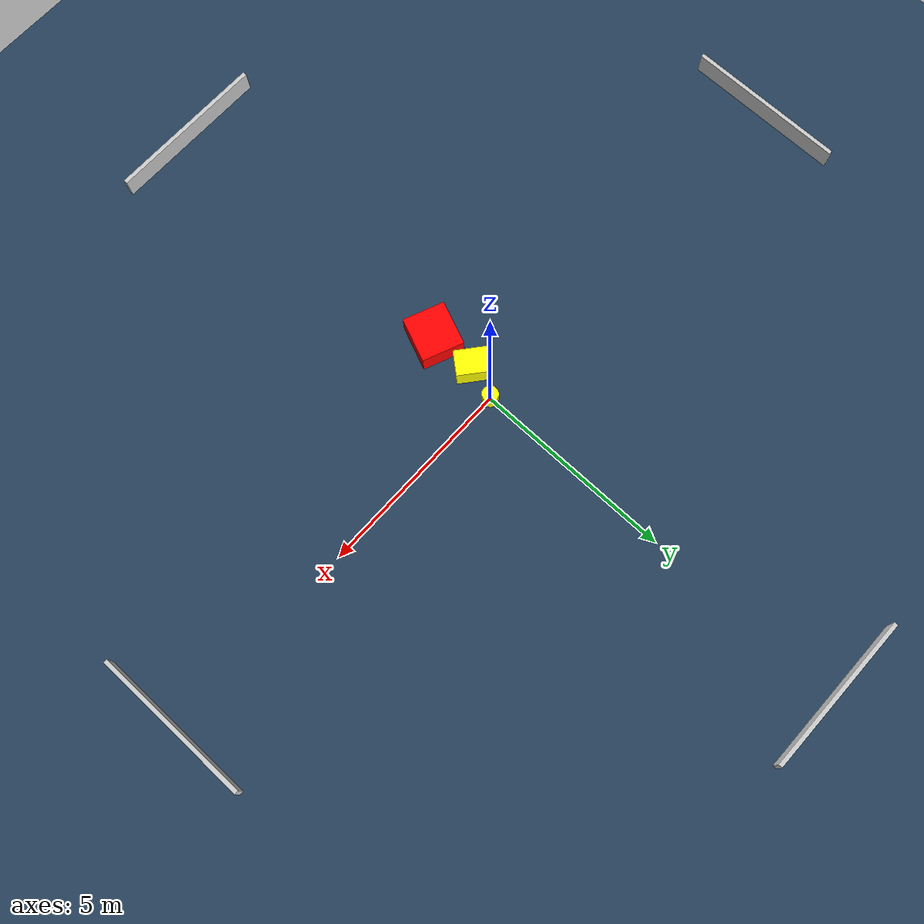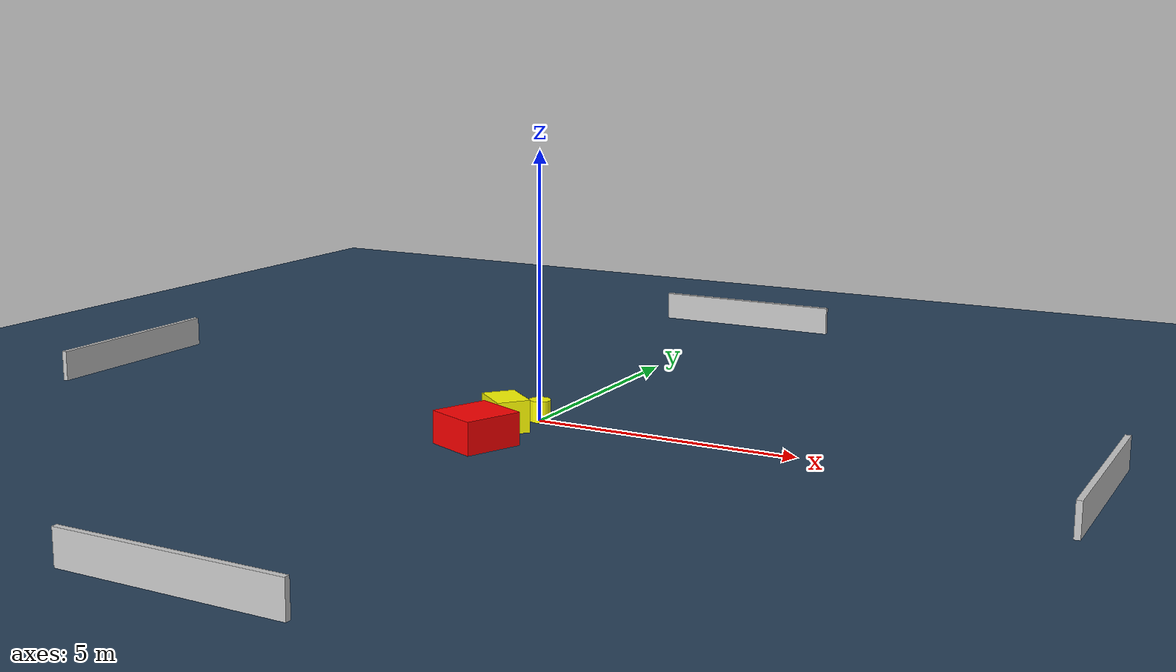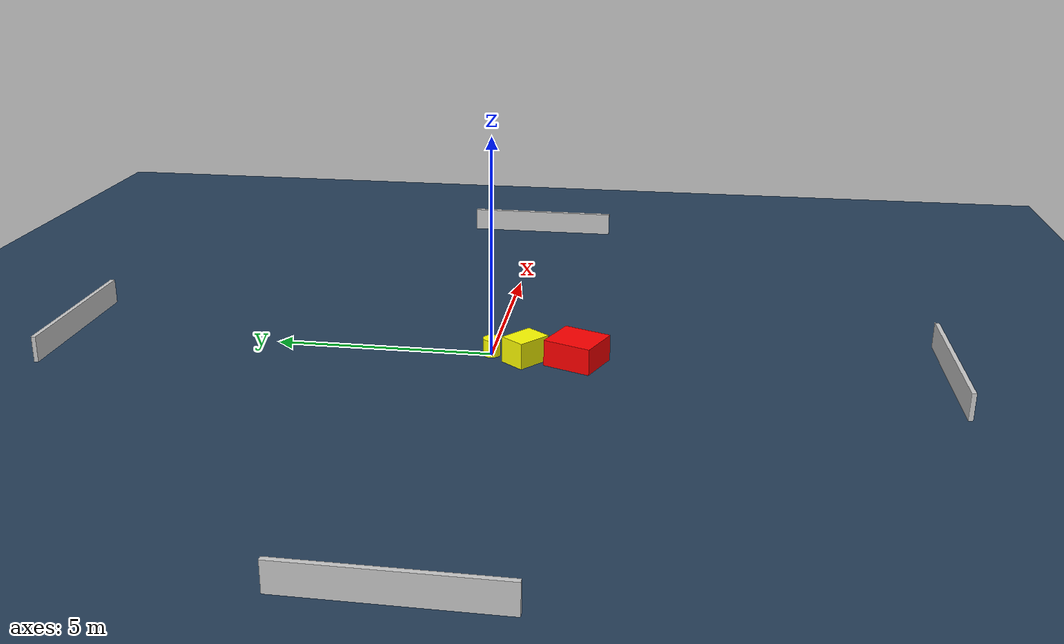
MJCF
<?xml version="1.0" ?>
<mujoco model="generated_environment">
  <option timestep="0.01" integrator="RK4" cone="elliptic"/>
  <default>
    <geom density="1"/>
  </default>
  <asset>
    <texture builtin="gradient" height="3072" name="skybox" rgb1="0.3 0.5 0.7" rgb2="0 0 0" type="skybox" width="512"/>
    <texture builtin="checker" height="300" name="groundplane" rgb1="0.2 0.3 0.4" rgb2="0.1 0.2 0.3" type="2d" width="300"/>
    <material name="groundplane" reflectance="0.2" texrepeat="5 5" texture="groundplane"/>
  </asset>
  <worldbody>
    <light dir="0 0 -1" directional="true" pos="0 0 1.5"/>
    <geom condim="3" friction="0.5 0.005 0.001" material="groundplane" name="floor" pos="0 0 0" size="0 0 0.05" type="plane"/>
    <body name="walls">
      <geom name="wall_1" condim="4" pos="-10.0 0.0 0.3" rgba="0.800000011920929 0.800000011920929 0.800000011920929 1.0" size="0.05 2.0 0.3" type="box"/>
      <geom name="wall_2" condim="4" pos="10.0 0.0 0.3" rgba="0.800000011920929 0.800000011920929 0.800000011920929 1.0" size="0.05 2.0 0.3" type="box"/>
      <geom name="wall_3" condim="4" pos="0.0 -10.0 0.3" rgba="0.800000011920929 0.800000011920929 0.800000011920929 1.0" size="2.0 0.05 0.3" type="box"/>
      <geom name="wall_4" condim="4" pos="0.0 10.0 0.3" rgba="0.800000011920929 0.800000011920929 0.800000011920929 1.0" size="2.0 0.05 0.3" type="box"/>
    </body>
    <body name="robot">
      <joint name="joint_x" type="slide" pos="0 0 0" axis="1 0 0"/>
      <joint name="joint_y" type="slide" pos="0 0 0" axis="0 1 0"/>
      <geom name="robot" type="cylinder" pos="0.0 0.0 0.2" size="0.2 0.2 0.0" mass="5.0" friction="1.0 0.005 0.0001" condim="4" rgba="1.0 1.0 0.0 1.0"/>
    </body>
    <body name="obstacle_1_movable">
      <geom name="obstacle_1_movable" condim="4" pos="-0.2637820756287243 -0.7974366550917777 0.3" euler="0 0 140.57855917088358" friction="0.0 0.005 0.001" rgba="1.0 1.0 0.0 1.0" size="0.4136277009750338 0.31085274639933563 0.3" type="box" mass="0.1"/>
      <joint type="free"/>
    </body>
    <body name="obstacle_2_static">
      <geom name="obstacle_2_static" condim="4" pos="-0.18627457247539556 -1.949256130764487 0.3" euler="0 0 247.5252150167904" friction="0.0 0.005 0.001" rgba="1.0 0.0 0.0 1.0" size="0.5590349086008957 0.5212350216508347 0.3" type="box"/>
    </body>
  </worldbody>
  <actuator>
    <motor name="actuator_x" joint="joint_x" gear="1" ctrlrange="-1 1"/>
    <motor name="actuator_y" joint="joint_y" gear="1" ctrlrange="-1 1"/>
  </actuator>
</mujoco>
